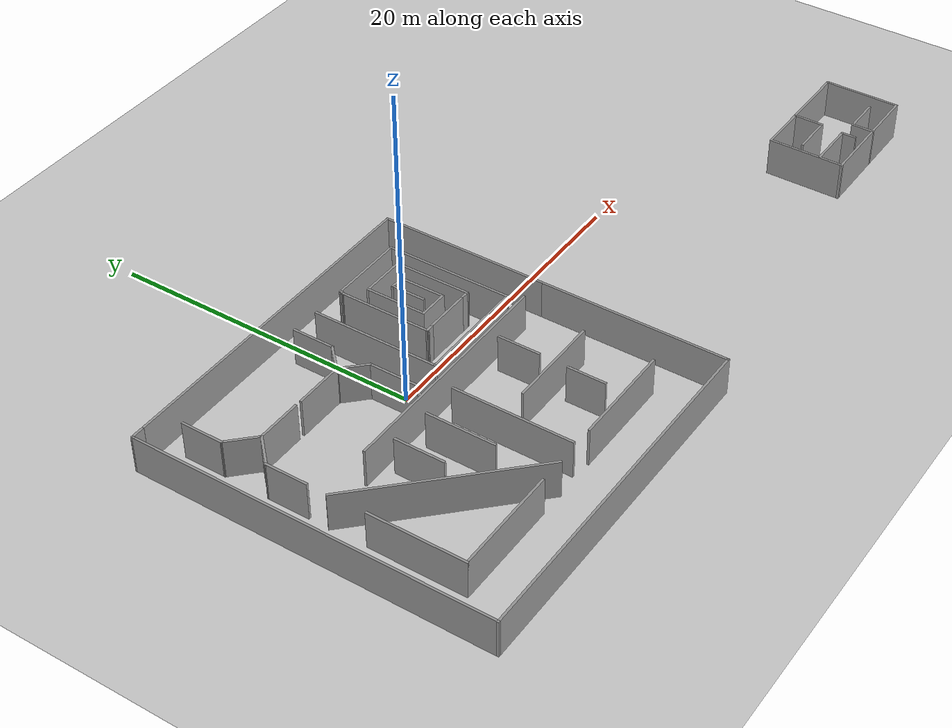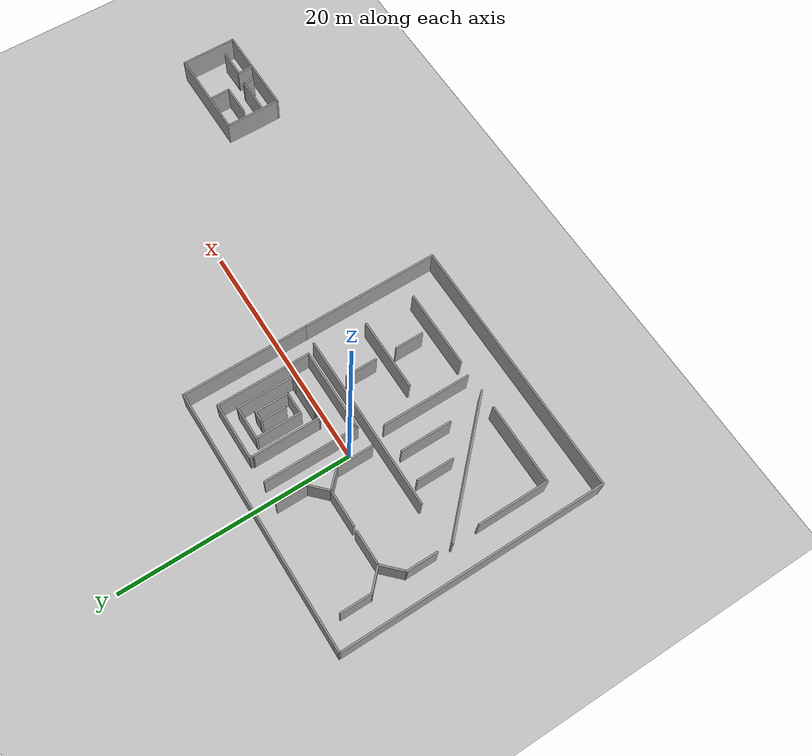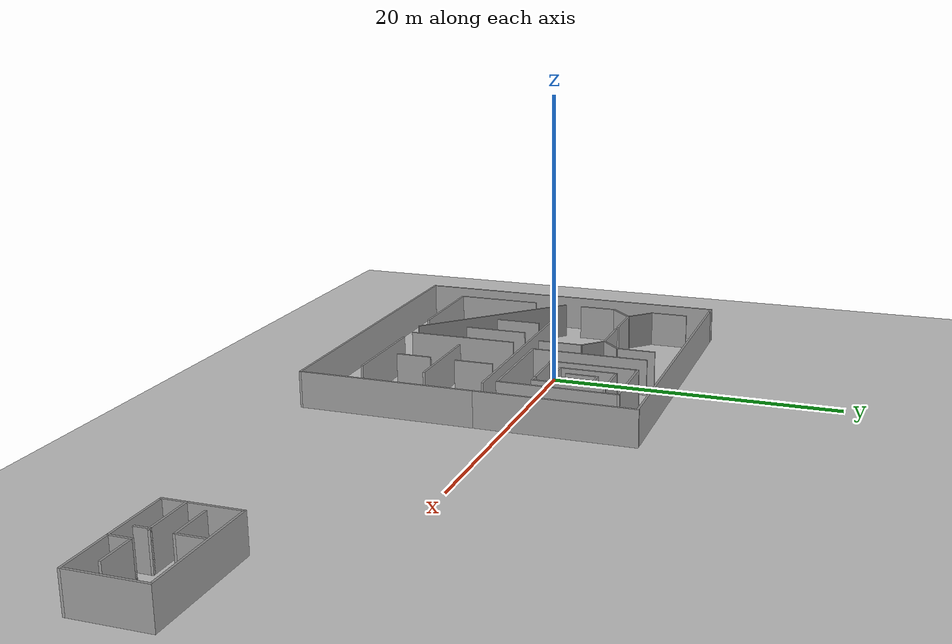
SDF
<sdf version="1.7">
 <world name="default">
  <light name="sun" type="directional">
   <pose>0 0 10 0 -0 0</pose>
   <diffuse>0.8 0.8 0.8 1</diffuse>
   <specular>0.2 0.2 0.2 1</specular>
   <attenuation>
    <range>1000</range>
    <constant>0.9</constant>
    <linear>0.01</linear>
    <quadratic>0.001</quadratic>
   </attenuation>
   <direction>-0.5 0.1 -0.9</direction>
   <spot><inner_angle>0</inner_angle><outer_angle>0</outer_angle><falloff>0</falloff></spot>
  </light>
  <model name="ground_plane">
   <static>1</static>
   <link name="link">
    <collision name="collision">
     <geometry><plane><normal>0 0 1</normal><size>100 100</size></plane></geometry>
     <surface>
      <contact><collide_bitmask>65535</collide_bitmask></contact>
      <friction><ode><mu>100</mu><mu2>50</mu2></ode></friction>
     </surface>
    </collision>
    <visual name="visual">
     <cast_shadows>0</cast_shadows>
     <geometry><plane><normal>0 0 1</normal><size>100 100</size></plane></geometry>
     <material>
      <script><uri>file://media/materials/scripts/gazebo.material</uri><name>Gazebo/Grey</name></script>
     </material>
    </visual>
   </link>
  </model>
  <gravity>0 0 -9.8</gravity>
  <magnetic_field>6e-06 2.3e-05 -4.2e-05</magnetic_field>
  <atmosphere type="adiabatic"/>
  <physics type="ode">
   <max_step_size>0.001</max_step_size>
   <real_time_factor>1</real_time_factor>
   <real_time_update_rate>1000</real_time_update_rate>
  </physics>
  <scene><ambient>0.4 0.4 0.4 1</ambient><background>0.7 0.7 0.7 1</background><shadows>1</shadows></scene>
  <audio><device>default</device></audio>
  <spherical_coordinates>
   <surface_model>EARTH_WGS84</surface_model>
   <latitude_deg>0</latitude_deg>
   <longitude_deg>0</longitude_deg>
   <elevation>0</elevation>
   <heading_deg>0</heading_deg>
  </spherical_coordinates>
  <model name="room">
   <pose>34.9802 -9.01089 0 0 -0 0</pose>
   <link name="Wall_10">
    <collision name="Wall_10_Collision">
     <geometry><box><size>5 0.15 2.5</size></box></geometry>
     <pose>0 0 1.25 0 -0 0</pose>
    </collision>
    <visual name="Wall_10_Visual">
     <pose>0 0 1.25 0 -0 0</pose>
     <geometry><box><size>5 0.15 2.5</size></box></geometry>
     <material>
      <script><uri>file://media/materials/scripts/gazebo.material</uri><name>Gazebo/Grey</name></script>
      <ambient>1 1 1 1</ambient>
     </material>
     <meta><layer>0</layer></meta>
    </visual>
    <pose>-4.9771 0.000716 0 0 -0 1.5708</pose>
   </link>
   <link name="Wall_12">
    <collision name="Wall_12_Collision">
     <geometry><box><size>2 0.15 2.5</size></box></geometry>
     <pose>0 0 1.25 0 -0 0</pose>
    </collision>
    <visual name="Wall_12_Visual">
     <pose>0 0 1.25 0 -0 0</pose>
     <geometry><box><size>2 0.15 2.5</size></box></geometry>
     <material>
      <script><uri>file://media/materials/scripts/gazebo.material</uri><name>Gazebo/Grey</name></script>
      <ambient>1 1 1 1</ambient>
     </material>
     <meta><layer>0</layer></meta>
    </visual>
    <pose>-1.70715 1.49403 0 0 -0 -1.5708</pose>
   </link>
   <link name="Wall_13">
    <collision name="Wall_13_Collision">
     <geometry><box><size>2.75 0.15 2.5</size></box></geometry>
     <pose>0 0 1.25 0 -0 0</pose>
    </collision>
    <visual name="Wall_13_Visual">
     <pose>0 0 1.25 0 -0 0</pose>
     <geometry><box><size>2.75 0.15 2.5</size></box></geometry>
     <material>
      <script><uri>file://media/materials/scripts/gazebo.material</uri><name>Gazebo/Grey</name></script>
      <ambient>1 1 1 1</ambient>
     </material>
     <meta><layer>0</layer></meta>
    </visual>
    <pose>-3.00715 0.569031 0 0 -0 3.14159</pose>
   </link>
   <link name="Wall_15">
    <collision name="Wall_15_Collision">
     <geometry><box><size>3.25 0.15 2.5</size></box></geometry>
     <pose>0 0 1.25 0 -0 0</pose>
    </collision>
    <visual name="Wall_15_Visual">
     <pose>0 0 1.25 0 -0 0</pose>
     <geometry><box><size>3.25 0.15 2.5</size></box></geometry>
     <material>
      <script><uri>file://media/materials/scripts/gazebo.material</uri><name>Gazebo/Grey</name></script>
      <ambient>1 1 1 1</ambient>
     </material>
     <meta><layer>0</layer></meta>
    </visual>
    <pose>-3.37532 -0.921571 0 0 -0 0</pose>
   </link>
   <link name="Wall_16">
    <collision name="Wall_16_Collision">
     <geometry><box><size>1 0.15 2.5</size></box></geometry>
     <pose>0 0 1.25 0 -0 0</pose>
    </collision>
    <visual name="Wall_16_Visual">
     <pose>0 0 1.25 0 -0 0</pose>
     <geometry><box><size>1 0.15 2.5</size></box></geometry>
     <material>
      <script><uri>file://media/materials/scripts/gazebo.material</uri><name>Gazebo/Grey</name></script>
      <ambient>1 1 1 1</ambient>
     </material>
     <meta><layer>0</layer></meta>
    </visual>
    <pose>-1.82532 -1.34657 0 0 -0 -1.5708</pose>
   </link>
   <link name="Wall_21">
    <collision name="Wall_21_Collision">
     <geometry><box><size>1.5 0.15 2.5</size></box></geometry>
     <pose>0 0 1.25 0 -0 0</pose>
    </collision>
    <visual name="Wall_21_Visual">
     <pose>0 0 1.25 0 -0 0</pose>
     <geometry><box><size>1.5 0.15 2.5</size></box></geometry>
     <material>
      <script><uri>file://media/materials/scripts/gazebo.material</uri><name>Gazebo/Grey</name></script>
      <ambient>1 1 1 1</ambient>
     </material>
     <meta><layer>0</layer></meta>
    </visual>
    <pose>-0.622763 -1.75072 0 0 -0 1.5708</pose>
   </link>
   <link name="Wall_22">
    <collision name="Wall_22_Collision">
     <geometry><box><size>2.5 0.15 2.5</size></box></geometry>
     <pose>0 0 1.25 0 -0 0</pose>
    </collision>
    <visual name="Wall_22_Visual">
     <pose>0 0 1.25 0 -0 0</pose>
     <geometry><box><size>2.5 0.15 2.5</size></box></geometry>
     <material>
      <script><uri>file://media/materials/scripts/gazebo.material</uri><name>Gazebo/Grey</name></script>
      <ambient>1 1 1 1</ambient>
     </material>
     <meta><layer>0</layer></meta>
    </visual>
    <pose>0.552238 -1.07572 0 0 -0 0</pose>
   </link>
   <link name="Wall_5">
    <collision name="Wall_5_Collision">
     <geometry><box><size>8 0.15 2.5</size></box></geometry>
     <pose>0 0 1.25 0 -0 0</pose>
    </collision>
    <visual name="Wall_5_Visual">
     <pose>0 0 1.25 0 -0 0</pose>
     <geometry><box><size>8 0.15 2.5</size></box></geometry>
     <material>
      <script><uri>file://media/materials/scripts/gazebo.material</uri><name>Gazebo/Grey</name></script>
      <ambient>1 1 1 1</ambient>
     </material>
     <meta><layer>0</layer></meta>
    </visual>
    <pose>-1.0521 2.42572 0 0 -0 0</pose>
   </link>
   <link name="Wall_7">
    <collision name="Wall_7_Collision">
     <geometry><box><size>5 0.15 2.5</size></box></geometry>
     <pose>0 0 1.25 0 -0 0</pose>
    </collision>
    <visual name="Wall_7_Visual">
     <pose>0 0 1.25 0 -0 0</pose>
     <geometry><box><size>5 0.15 2.5</size></box></geometry>
     <material>
      <script><uri>file://media/materials/scripts/gazebo.material</uri><name>Gazebo/Grey</name></script>
      <ambient>1 1 1 1</ambient>
     </material>
     <meta><layer>0</layer></meta>
    </visual>
    <pose>2.8729 0.000716 0 0 -0 -1.5708</pose>
   </link>
   <link name="Wall_9">
    <collision name="Wall_9_Collision">
     <geometry><box><size>8 0.15 2.5</size></box></geometry>
     <pose>0 0 1.25 0 -0 0</pose>
    </collision>
    <visual name="Wall_9_Visual">
     <pose>0 0 1.25 0 -0 0</pose>
     <geometry><box><size>8 0.15 2.5</size></box></geometry>
     <material>
      <script><uri>file://media/materials/scripts/gazebo.material</uri><name>Gazebo/Grey</name></script>
      <ambient>1 1 1 1</ambient>
     </material>
     <meta><layer>0</layer></meta>
    </visual>
    <pose>-1.0521 -2.42428 0 0 -0 3.14159</pose>
   </link>
   <static>1</static>
  </model>
  <model name="robot">
   <link name="base_link">
    <inertial>
     <pose>0.02 0 0.0128 0 -0 0</pose>
     <mass>1.25</mass>
     <inertia>
      <ixx>0.0231319</ixx>
      <ixy>1.51081e-20</ixy>
      <ixz>-0.00093</ixz>
      <iyy>0.0353519</iyy>
      <iyz>4.27978e-36</iyz>
      <izz>0.0146167</izz>
     </inertia>
    </inertial>
    <collision name="base_link_collision"><geometry><box><size>0.5 0.3 0.1</size></box></geometry></collision>
    <collision name="base_link_fixed_joint_lump__camera_link_collision_1">
     <pose>0.25 0 0.05 0 -0 0</pose>
     <geometry><box><size>0.02 0.1 0.02</size></box></geometry>
    </collision>
    <collision name="base_link_fixed_joint_lump__imu_link_collision_2">
     <pose>0 0 0.02 0 -0 0</pose>
     <geometry><box><size>0.02 0.02 0.02</size></box></geometry>
    </collision>
    <visual name="base_link_visual"><geometry><box><size>0.5 0.3 0.1</size></box></geometry></visual>
    <visual name="base_link_fixed_joint_lump__camera_link_visual_1">
     <pose>0.25 0 0.05 0 -0 0</pose>
     <geometry><box><size>0.02 0.1 0.02</size></box></geometry>
     <material>
      <script><name>Gazebo/Red</name><uri>file://media/materials/scripts/gazebo.material</uri></script>
     </material>
    </visual>
    <visual name="base_link_fixed_joint_lump__imu_link_visual_2">
     <pose>0 0 0.02 0 -0 0</pose>
     <geometry><box><size>0.02 0.02 0.02</size></box></geometry>
     <material>
      <script><name>Gazebo/Black</name><uri>file://media/materials/scripts/gazebo.material</uri></script>
     </material>
    </visual>
    <visual name="base_link_fixed_joint_lump__livox_link_visual_3">
     <pose>0 0 0.1 0 -0 0</pose>
     <geometry><box><size>0.1 0.06 0.06</size></box></geometry>
    </visual>
    <sensor name="imu_sensor" type="imu">
     <plugin name="imu_plugin" filename="libgazebo_ros_imu_sensor.so">
      <ros><namespace>/</namespace><remapping>~/out:=imu_raw</remapping></ros>
      <initial_orientation_as_reference>0</initial_orientation_as_reference>
     </plugin>
     <update_rate>200</update_rate>
     <always_on>1</always_on>
     <imu>
      <angular_velocity>
       <x>
        <noise type="gaussian">
         <mean>0</mean>
         <stddev>0</stddev>
         <bias_mean>0</bias_mean>
         <bias_stddev>0</bias_stddev>
        </noise>
       </x>
       <y>
        <noise type="gaussian">
         <mean>0</mean>
         <stddev>0</stddev>
         <bias_mean>0</bias_mean>
         <bias_stddev>0</bias_stddev>
        </noise>
       </y>
       <z>
        <noise type="gaussian">
         <mean>0</mean>
         <stddev>0</stddev>
         <bias_mean>0</bias_mean>
         <bias_stddev>0</bias_stddev>
        </noise>
       </z>
      </angular_velocity>
      <linear_acceleration>
       <x>
        <noise type="gaussian">
         <mean>0</mean>
         <stddev>0</stddev>
         <bias_mean>0</bias_mean>
         <bias_stddev>0</bias_stddev>
        </noise>
       </x>
       <y>
        <noise type="gaussian">
         <mean>0</mean>
         <stddev>0</stddev>
         <bias_mean>0</bias_mean>
         <bias_stddev>0</bias_stddev>
        </noise>
       </y>
       <z>
        <noise type="gaussian">
         <mean>0</mean>
         <stddev>0</stddev>
         <bias_mean>0</bias_mean>
         <bias_stddev>0</bias_stddev>
        </noise>
       </z>
      </linear_acceleration>
     </imu>
     <pose>0 0 0.02 0 -0 0</pose>
    </sensor>
    <sensor name="livox_link" type="ray">
     <visualize>1</visualize>
     <update_rate>10</update_rate>
     <plugin name="livox_link_plugin" filename="libros2_livox.so">
      <ray>
       <scan>
        <horizontal>
         <samples>100</samples>
         <resolution>1</resolution>
         <min_angle>0</min_angle>
         <max_angle>6.2831852</max_angle>
        </horizontal>
        <vertical>
         <samples>360</samples>
         <resolution>1</resolution>
         <min_angle>-0.12601276984444446</min_angle>
         <max_angle>0.9637707965111111</max_angle>
        </vertical>
       </scan>
       <range><min>0.1</min><max>200.0</max><resolution>0.002</resolution></range>
       <noise><type>gaussian</type><mean>0.0</mean><stddev>0.002</stddev></noise>
      </ray>
      <visualize>0</visualize>
      <samples>30000</samples>
      <downsample>1</downsample>
      <csv_file_name>/home/akun/workspace/CAR/1_URDF_ws/install/ros2_livox_simulation/share/ros2_livox_simulation/scan_mode/mid360.csv</csv_file_name>
      <topic>livox</topic>
     </plugin>
     <pose>0 0 0.1 0 -0 0</pose>
     <ray>
      <scan>
       <horizontal>
        <samples>640</samples>
        <resolution>1</resolution>
        <min_angle>0</min_angle>
        <max_angle>0</max_angle>
       </horizontal>
       <vertical><samples>1</samples><min_angle>0</min_angle><max_angle>0</max_angle></vertical>
      </scan>
      <range><min>0</min><max>0</max></range>
     </ray>
    </sensor>
   </link>
   <joint name="wheel_1_joint" type="revolute">
    <pose relative_to="base_link">0.25 0.17 -0.05 0 -0 0</pose>
    <parent>base_link</parent>
    <child>wheel_1_link</child>
    <axis>
     <xyz>0 1 0</xyz>
     <limit><lower>-100</lower><upper>100</upper><effort>100</effort><velocity>10</velocity></limit>
     <dynamics><spring_reference>0</spring_reference><spring_stiffness>0</spring_stiffness></dynamics>
    </axis>
   </joint>
   <link name="wheel_1_link">
    <pose relative_to="wheel_1_joint">0 0 0 0 -0 0</pose>
    <inertial>
     <mass>0.05</mass>
     <inertia>
      <ixx>3.79167e-05</ixx>
      <ixy>0</ixy>
      <ixz>0</ixz>
      <iyy>3.79167e-05</iyy>
      <iyz>0</iyz>
      <izz>6.25e-05</izz>
     </inertia>
    </inertial>
    <collision name="wheel_1_link_collision">
     <pose>0 0 0 1.57079 -0 0</pose>
     <geometry><cylinder><length>0.04</length><radius>0.05</radius></cylinder></geometry>
     <surface>
      <contact><ode><kp>1e+09</kp><kd>1</kd></ode></contact>
      <friction><ode><mu>0</mu><mu2>0</mu2></ode></friction>
     </surface>
    </collision>
    <visual name="wheel_1_link_visual">
     <pose>0 0 0 1.57079 -0 0</pose>
     <geometry><cylinder><length>0.04</length><radius>0.05</radius></cylinder></geometry>
     <material>
      <script><name>Gazebo/Yellow</name><uri>file://media/materials/scripts/gazebo.material</uri></script>
     </material>
    </visual>
   </link>
   <joint name="wheel_2_joint" type="revolute">
    <pose relative_to="base_link">-0.25 0.17 -0.05 0 -0 0</pose>
    <parent>base_link</parent>
    <child>wheel_2_link</child>
    <axis>
     <xyz>0 1 0</xyz>
     <limit><effort>100</effort><velocity>10</velocity><lower>-1e+16</lower><upper>1e+16</upper></limit>
     <dynamics><spring_reference>0</spring_reference><spring_stiffness>0</spring_stiffness></dynamics>
    </axis>
   </joint>
   <link name="wheel_2_link">
    <pose relative_to="wheel_2_joint">0 0 0 0 -0 0</pose>
    <inertial>
     <mass>0.05</mass>
     <inertia>
      <ixx>3.79167e-05</ixx>
      <ixy>0</ixy>
      <ixz>0</ixz>
      <iyy>3.79167e-05</iyy>
      <iyz>0</iyz>
      <izz>6.25e-05</izz>
     </inertia>
    </inertial>
    <collision name="wheel_2_link_collision">
     <pose>0 0 0 1.57079 -0 0</pose>
     <geometry><cylinder><length>0.04</length><radius>0.05</radius></cylinder></geometry>
     <surface>
      <contact><ode><kp>1e+09</kp><kd>1</kd></ode></contact>
      <friction><ode><mu>5</mu><mu2>5</mu2></ode></friction>
     </surface>
    </collision>
    <visual name="wheel_2_link_visual">
     <pose>0 0 0 1.57079 -0 0</pose>
     <geometry><cylinder><length>0.04</length><radius>0.05</radius></cylinder></geometry>
     <material>
      <script><name>Gazebo/Yellow</name><uri>file://media/materials/scripts/gazebo.material</uri></script>
     </material>
    </visual>
   </link>
   <joint name="wheel_3_joint" type="revolute">
    <pose relative_to="base_link">0.25 -0.17 -0.05 0 -0 0</pose>
    <parent>base_link</parent>
    <child>wheel_3_link</child>
    <axis>
     <xyz>0 1 0</xyz>
     <limit><lower>-100</lower><upper>100</upper><effort>100</effort><velocity>10</velocity></limit>
     <dynamics><spring_reference>0</spring_reference><spring_stiffness>0</spring_stiffness></dynamics>
    </axis>
   </joint>
   <link name="wheel_3_link">
    <pose relative_to="wheel_3_joint">0 0 0 0 -0 0</pose>
    <inertial>
     <mass>0.05</mass>
     <inertia>
      <ixx>3.79167e-05</ixx>
      <ixy>0</ixy>
      <ixz>0</ixz>
      <iyy>3.79167e-05</iyy>
      <iyz>0</iyz>
      <izz>6.25e-05</izz>
     </inertia>
    </inertial>
    <collision name="wheel_3_link_collision">
     <pose>0 0 0 1.57079 -0 0</pose>
     <geometry><cylinder><length>0.04</length><radius>0.05</radius></cylinder></geometry>
     <surface>
      <contact><ode><kp>1e+09</kp><kd>1</kd></ode></contact>
      <friction><ode><mu>0</mu><mu2>0</mu2></ode></friction>
     </surface>
    </collision>
    <visual name="wheel_3_link_visual">
     <pose>0 0 0 1.57079 -0 0</pose>
     <geometry><cylinder><length>0.04</length><radius>0.05</radius></cylinder></geometry>
     <material>
      <script><name>Gazebo/Yellow</name><uri>file://media/materials/scripts/gazebo.material</uri></script>
     </material>
    </visual>
   </link>
   <joint name="wheel_4_joint" type="revolute">
    <pose relative_to="base_link">-0.25 -0.17 -0.05 0 -0 0</pose>
    <parent>base_link</parent>
    <child>wheel_4_link</child>
    <axis>
     <xyz>0 1 0</xyz>
     <limit><effort>100</effort><velocity>10</velocity><lower>-1e+16</lower><upper>1e+16</upper></limit>
     <dynamics><spring_reference>0</spring_reference><spring_stiffness>0</spring_stiffness></dynamics>
    </axis>
   </joint>
   <link name="wheel_4_link">
    <pose relative_to="wheel_4_joint">0 0 0 0 -0 0</pose>
    <inertial>
     <mass>0.05</mass>
     <inertia>
      <ixx>3.79167e-05</ixx>
      <ixy>0</ixy>
      <ixz>0</ixz>
      <iyy>3.79167e-05</iyy>
      <iyz>0</iyz>
      <izz>6.25e-05</izz>
     </inertia>
    </inertial>
    <collision name="wheel_4_link_collision">
     <pose>0 0 0 1.57079 -0 0</pose>
     <geometry><cylinder><length>0.04</length><radius>0.05</radius></cylinder></geometry>
     <surface>
      <contact><ode><kp>1e+09</kp><kd>1</kd></ode></contact>
      <friction><ode><mu>5</mu><mu2>5</mu2></ode></friction>
     </surface>
    </collision>
    <visual name="wheel_4_link_visual">
     <pose>0 0 0 1.57079 -0 0</pose>
     <geometry><cylinder><length>0.04</length><radius>0.05</radius></cylinder></geometry>
     <material>
      <script><name>Gazebo/Yellow</name><uri>file://media/materials/scripts/gazebo.material</uri></script>
     </material>
    </visual>
   </link>
   <static>0</static>
   <plugin name="diff_drive" filename="libgazebo_ros_diff_drive.so">
    <ros><namespace>/</namespace><remapping>cmd_vel:=cmd_vel</remapping><remapping>odom:=odom</remapping></ros>
    <update_rate>30</update_rate>
    <left_joint>wheel_2_joint</left_joint>
    <right_joint>wheel_4_joint</right_joint>
    <wheel_separation>0.3</wheel_separation>
    <wheel_diameter>0.10</wheel_diameter>
    <max_wheel_torque>1000</max_wheel_torque>
    <max_wheel_acceleration>5.0</max_wheel_acceleration>
    <publish_odom>1</publish_odom>
    <publish_odom_tf>1</publish_odom_tf>
    <publish_wheel_tf>1</publish_wheel_tf>
    <odometry_frame>odom</odometry_frame>
    <robot_base_frame>base_link</robot_base_frame>
   </plugin>
   <pose>-0.024576 1.55531 0.099995 -9e-06 -1.4e-05 -0.142259</pose>
  </model>
  <model name="Untitled">
   <pose>-1.10404 -2.62491 0 0 -0 0</pose>
   <link name="Wall_1">
    <collision name="Wall_1_Collision">
     <geometry><box><size>22 0.15 2.5</size></box></geometry>
     <pose>0 0 1.25 0 -0 0</pose>
    </collision>
    <visual name="Wall_1_Visual">
     <pose>0 0 1.25 0 -0 0</pose>
     <geometry><box><size>22 0.15 2.5</size></box></geometry>
     <material>
      <script><uri>file://media/materials/scripts/gazebo.material</uri><name>Gazebo/Grey</name></script>
      <ambient>1 1 1 1</ambient>
     </material>
     <meta><layer>0</layer></meta>
    </visual>
    <pose>0.375 11.2325 0 0 -0 0</pose>
   </link>
   <link name="Wall_10">
    <collision name="Wall_10_Collision">
     <geometry><box><size>2.75 0.15 2.5</size></box></geometry>
     <pose>0 0 1.25 0 -0 0</pose>
    </collision>
    <visual name="Wall_10_Visual">
     <pose>0 0 1.25 0 -0 0</pose>
     <geometry><box><size>2.75 0.15 2.5</size></box></geometry>
     <material>
      <script><uri>file://media/materials/scripts/gazebo.material</uri><name>Gazebo/Grey</name></script>
      <ambient>1 1 1 1</ambient>
     </material>
     <meta><layer>0</layer></meta>
    </visual>
    <pose>-9.03139 8.42187 0 0 -0 -1.5708</pose>
   </link>
   <link name="Wall_12">
    <collision name="Wall_12_Collision">
     <geometry><box><size>2.25 0.15 2.5</size></box></geometry>
     <pose>0 0 1.25 0 -0 0</pose>
    </collision>
    <visual name="Wall_12_Visual">
     <pose>0 0 1.25 0 -0 0</pose>
     <geometry><box><size>2.25 0.15 2.5</size></box></geometry>
     <material>
      <script><uri>file://media/materials/scripts/gazebo.material</uri><name>Gazebo/Grey</name></script>
      <ambient>1 1 1 1</ambient>
     </material>
     <meta><layer>0</layer></meta>
    </visual>
    <pose>-8.28893 6.37941 0 0 -0 -0.785398</pose>
   </link>
   <link name="Wall_13">
    <collision name="Wall_13_Collision">
     <geometry><box><size>2.25 0.15 2.5</size></box></geometry>
     <pose>0 0 1.25 0 -0 0</pose>
    </collision>
    <visual name="Wall_13_Visual">
     <pose>0 0 1.25 0 -0 0</pose>
     <geometry><box><size>2.25 0.15 2.5</size></box></geometry>
     <material>
      <script><uri>file://media/materials/scripts/gazebo.material</uri><name>Gazebo/Grey</name></script>
      <ambient>1 1 1 1</ambient>
     </material>
     <meta><layer>0</layer></meta>
    </visual>
    <pose>-8.28893 4.89449 0 0 -0 -2.35619</pose>
   </link>
   <link name="Wall_14">
    <collision name="Wall_14_Collision">
     <geometry><box><size>2.75 0.15 2.5</size></box></geometry>
     <pose>0 0 1.25 0 -0 0</pose>
    </collision>
    <visual name="Wall_14_Visual">
     <pose>0 0 1.25 0 -0 0</pose>
     <geometry><box><size>2.75 0.15 2.5</size></box></geometry>
     <material>
      <script><uri>file://media/materials/scripts/gazebo.material</uri><name>Gazebo/Grey</name></script>
      <ambient>1 1 1 1</ambient>
     </material>
     <meta><layer>0</layer></meta>
    </visual>
    <pose>-9.03139 2.85202 0 0 -0 -1.5708</pose>
   </link>
   <link name="Wall_16">
    <collision name="Wall_16_Collision">
     <geometry><box><size>12.25 0.15 2.5</size></box></geometry>
     <pose>0 0 1.25 0 -0 0</pose>
    </collision>
    <visual name="Wall_16_Visual">
     <pose>0 0 1.25 0 -0 0</pose>
     <geometry><box><size>12.25 0.15 2.5</size></box></geometry>
     <material>
      <script><uri>file://media/materials/scripts/gazebo.material</uri><name>Gazebo/Grey</name></script>
      <ambient>1 1 1 1</ambient>
     </material>
     <meta><layer>0</layer></meta>
    </visual>
    <pose>-4.78694 -4.09932 0 0 -0 -0.785398</pose>
   </link>
   <link name="Wall_18">
    <collision name="Wall_18_Collision">
     <geometry><box><size>6.25 0.15 2.5</size></box></geometry>
     <pose>0 0 1.25 0 -0 0</pose>
    </collision>
    <visual name="Wall_18_Visual">
     <pose>0 0 1.25 0 -0 0</pose>
     <geometry><box><size>6.25 0.15 2.5</size></box></geometry>
     <material>
      <script><uri>file://media/materials/scripts/gazebo.material</uri><name>Gazebo/Grey</name></script>
      <ambient>1 1 1 1</ambient>
     </material>
     <meta><layer>0</layer></meta>
    </visual>
    <pose>-8.97375 -5.28529 0 0 -0 -1.5708</pose>
   </link>
   <link name="Wall_19">
    <collision name="Wall_19_Collision">
     <geometry><box><size>7 0.15 2.5</size></box></geometry>
     <pose>0 0 1.25 0 -0 0</pose>
    </collision>
    <visual name="Wall_19_Visual">
     <pose>0 0 1.25 0 -0 0</pose>
     <geometry><box><size>7 0.15 2.5</size></box></geometry>
     <material>
      <script><uri>file://media/materials/scripts/gazebo.material</uri><name>Gazebo/Grey</name></script>
      <ambient>1 1 1 1</ambient>
     </material>
     <meta><layer>0</layer></meta>
    </visual>
    <pose>-5.54875 -8.33529 0 0 -0 0</pose>
   </link>
   <link name="Wall_2">
    <collision name="Wall_2_Collision">
     <geometry><box><size>11 0.15 2.5</size></box></geometry>
     <pose>0 0 1.25 0 -0 0</pose>
    </collision>
    <visual name="Wall_2_Visual">
     <pose>0 0 1.25 0 -0 0</pose>
     <geometry><box><size>11 0.15 2.5</size></box></geometry>
     <material>
      <script><uri>file://media/materials/scripts/gazebo.material</uri><name>Gazebo/Grey</name></script>
      <ambient>1 1 1 1</ambient>
     </material>
     <meta><layer>0</layer></meta>
    </visual>
    <pose>11.3 5.8075 0 0 -0 -1.5708</pose>
   </link>
   <link name="Wall_21">
    <collision name="Wall_21_Collision">
     <geometry><box><size>3 0.15 2.5</size></box></geometry>
     <pose>0 0 1.25 0 -0 0</pose>
    </collision>
    <visual name="Wall_21_Visual">
     <pose>0 0 1.25 0 -0 0</pose>
     <geometry><box><size>3 0.15 2.5</size></box></geometry>
     <material>
      <script><uri>file://media/materials/scripts/gazebo.material</uri><name>Gazebo/Grey</name></script>
      <ambient>1 1 1 1</ambient>
     </material>
     <meta><layer>0</layer></meta>
    </visual>
    <pose>-6.12146 5.63695 0 0 -0 0</pose>
   </link>
   <link name="Wall_24">
    <collision name="Wall_24_Collision">
     <geometry><box><size>3.25 0.15 2.5</size></box></geometry>
     <pose>0 0 1.25 0 -0 0</pose>
    </collision>
    <visual name="Wall_24_Visual">
     <pose>0 0 1.25 0 -0 0</pose>
     <geometry><box><size>3.25 0.15 2.5</size></box></geometry>
     <material>
      <script><uri>file://media/materials/scripts/gazebo.material</uri><name>Gazebo/Grey</name></script>
      <ambient>1 1 1 1</ambient>
     </material>
     <meta><layer>0</layer></meta>
    </visual>
    <pose>-2.65499 5.61139 0 0 -0 0</pose>
   </link>
   <link name="Wall_25">
    <collision name="Wall_25_Collision">
     <geometry><box><size>2 0.15 2.5</size></box></geometry>
     <pose>0 0 1.25 0 -0 0</pose>
    </collision>
    <visual name="Wall_25_Visual">
     <pose>0 0 1.25 0 -0 0</pose>
     <geometry><box><size>2 0.15 2.5</size></box></geometry>
     <material>
      <script><uri>file://media/materials/scripts/gazebo.material</uri><name>Gazebo/Grey</name></script>
      <ambient>1 1 1 1</ambient>
     </material>
     <meta><layer>0</layer></meta>
    </visual>
    <pose>-0.450922 6.26546 0 0 -0 0.785398</pose>
   </link>
   <link name="Wall_26">
    <collision name="Wall_26_Collision">
     <geometry><box><size>2.75 0.15 2.5</size></box></geometry>
     <pose>0 0 1.25 0 -0 0</pose>
    </collision>
    <visual name="Wall_26_Visual">
     <pose>0 0 1.25 0 -0 0</pose>
     <geometry><box><size>2.75 0.15 2.5</size></box></geometry>
     <material>
      <script><uri>file://media/materials/scripts/gazebo.material</uri><name>Gazebo/Grey</name></script>
      <ambient>1 1 1 1</ambient>
     </material>
     <meta><layer>0</layer></meta>
    </visual>
    <pose>0.203152 8.21954 0 0 -0 1.5708</pose>
   </link>
   <link name="Wall_28">
    <collision name="Wall_28_Collision">
     <geometry><box><size>2 0.15 2.5</size></box></geometry>
     <pose>0 0 1.25 0 -0 0</pose>
    </collision>
    <visual name="Wall_28_Visual">
     <pose>0 0 1.25 0 -0 0</pose>
     <geometry><box><size>2 0.15 2.5</size></box></geometry>
     <material>
      <script><uri>file://media/materials/scripts/gazebo.material</uri><name>Gazebo/Grey</name></script>
      <ambient>1 1 1 1</ambient>
     </material>
     <meta><layer>0</layer></meta>
    </visual>
    <pose>-0.450922 4.95732 0 0 -0 -0.785398</pose>
   </link>
   <link name="Wall_29">
    <collision name="Wall_29_Collision">
     <geometry><box><size>3.25 0.15 2.5</size></box></geometry>
     <pose>0 0 1.25 0 -0 0</pose>
    </collision>
    <visual name="Wall_29_Visual">
     <pose>0 0 1.25 0 -0 0</pose>
     <geometry><box><size>3.25 0.15 2.5</size></box></geometry>
     <material>
      <script><uri>file://media/materials/scripts/gazebo.material</uri><name>Gazebo/Grey</name></script>
      <ambient>1 1 1 1</ambient>
     </material>
     <meta><layer>0</layer></meta>
    </visual>
    <pose>0.203152 2.75324 0 0 -0 -1.5708</pose>
   </link>
   <link name="Wall_3">
    <collision name="Wall_3_Collision">
     <geometry><box><size>12.25 0.15 2.5</size></box></geometry>
     <pose>0 0 1.25 0 -0 0</pose>
    </collision>
    <visual name="Wall_3_Visual">
     <pose>0 0 1.25 0 -0 0</pose>
     <geometry><box><size>12.25 0.15 2.5</size></box></geometry>
     <material>
      <script><uri>file://media/materials/scripts/gazebo.material</uri><name>Gazebo/Grey</name></script>
      <ambient>1 1 1 1</ambient>
     </material>
     <meta><layer>0</layer></meta>
    </visual>
    <pose>11.3 -5.6675 0 0 -0 -1.5708</pose>
   </link>
   <link name="Wall_31">
    <collision name="Wall_31_Collision">
     <geometry><box><size>15.25 0.15 2.5</size></box></geometry>
     <pose>0 0 1.25 0 -0 0</pose>
    </collision>
    <visual name="Wall_31_Visual">
     <pose>0 0 1.25 0 -0 0</pose>
     <geometry><box><size>15.25 0.15 2.5</size></box></geometry>
     <material>
      <script><uri>file://media/materials/scripts/gazebo.material</uri><name>Gazebo/Grey</name></script>
      <ambient>1 1 1 1</ambient>
     </material>
     <meta><layer>0</layer></meta>
    </visual>
    <pose>2.11121 0.50819 0 0 -0 0</pose>
   </link>
   <link name="Wall_33">
    <collision name="Wall_33_Collision">
     <geometry><box><size>3.25 0.15 2.5</size></box></geometry>
     <pose>0 0 1.25 0 -0 0</pose>
    </collision>
    <visual name="Wall_33_Visual">
     <pose>0 0 1.25 0 -0 0</pose>
     <geometry><box><size>3.25 0.15 2.5</size></box></geometry>
     <material>
      <script><uri>file://media/materials/scripts/gazebo.material</uri><name>Gazebo/Grey</name></script>
      <ambient>1 1 1 1</ambient>
     </material>
     <meta><layer>0</layer></meta>
    </visual>
    <pose>-3.83112 -1.82604 0 0 -0 -1.5708</pose>
   </link>
   <link name="Wall_35">
    <collision name="Wall_35_Collision">
     <geometry><box><size>4.5 0.15 2.5</size></box></geometry>
     <pose>0 0 1.25 0 -0 0</pose>
    </collision>
    <visual name="Wall_35_Visual">
     <pose>0 0 1.25 0 -0 0</pose>
     <geometry><box><size>4.5 0.15 2.5</size></box></geometry>
     <material>
      <script><uri>file://media/materials/scripts/gazebo.material</uri><name>Gazebo/Grey</name></script>
      <ambient>1 1 1 1</ambient>
     </material>
     <meta><layer>0</layer></meta>
    </visual>
    <pose>-1.31359 -2.69283 0 0 -0 -1.5708</pose>
   </link>
   <link name="Wall_37">
    <collision name="Wall_37_Collision">
     <geometry><box><size>7.75 0.15 2.5</size></box></geometry>
     <pose>0 0 1.25 0 -0 0</pose>
    </collision>
    <visual name="Wall_37_Visual">
     <pose>0 0 1.25 0 -0 0</pose>
     <geometry><box><size>7.75 0.15 2.5</size></box></geometry>
     <material>
      <script><uri>file://media/materials/scripts/gazebo.material</uri><name>Gazebo/Grey</name></script>
      <ambient>1 1 1 1</ambient>
     </material>
     <meta><layer>0</layer></meta>
    </visual>
    <pose>1.09814 -4.33871 0 0 -0 -1.5708</pose>
   </link>
   <link name="Wall_39">
    <collision name="Wall_39_Collision">
     <geometry><box><size>6.75 0.15 2.5</size></box></geometry>
     <pose>0 0 1.25 0 -0 0</pose>
    </collision>
    <visual name="Wall_39_Visual">
     <pose>0 0 1.25 0 -0 0</pose>
     <geometry><box><size>6.75 0.15 2.5</size></box></geometry>
     <material>
      <script><uri>file://media/materials/scripts/gazebo.material</uri><name>Gazebo/Grey</name></script>
      <ambient>1 1 1 1</ambient>
     </material>
     <meta><layer>0</layer></meta>
    </visual>
    <pose>5.66708 -8.36015 0 0 -0 0</pose>
   </link>
   <link name="Wall_4">
    <collision name="Wall_4_Collision">
     <geometry><box><size>22.75 0.15 2.5</size></box></geometry>
     <pose>0 0 1.25 0 -0 0</pose>
    </collision>
    <visual name="Wall_4_Visual">
     <pose>0 0 1.25 0 -0 0</pose>
     <geometry><box><size>22.75 0.15 2.5</size></box></geometry>
     <material>
      <script><uri>file://media/materials/scripts/gazebo.material</uri><name>Gazebo/Grey</name></script>
      <ambient>1 1 1 1</ambient>
     </material>
     <meta><layer>0</layer></meta>
    </visual>
    <pose>0 -11.7175 0 0 -0 3.14159</pose>
   </link>
   <link name="Wall_41">
    <collision name="Wall_41_Collision">
     <geometry><box><size>6.25 0.15 2.5</size></box></geometry>
     <pose>0 0 1.25 0 -0 0</pose>
    </collision>
    <visual name="Wall_41_Visual">
     <pose>0 0 1.25 0 -0 0</pose>
     <geometry><box><size>6.25 0.15 2.5</size></box></geometry>
     <material>
      <script><uri>file://media/materials/scripts/gazebo.material</uri><name>Gazebo/Grey</name></script>
      <ambient>1 1 1 1</ambient>
     </material>
     <meta><layer>0</layer></meta>
    </visual>
    <pose>5.89417 -3.88747 0 0 -0 0</pose>
   </link>
   <link name="Wall_43">
    <collision name="Wall_43_Collision">
     <geometry><box><size>2.75 0.15 2.5</size></box></geometry>
     <pose>0 0 1.25 0 -0 0</pose>
    </collision>
    <visual name="Wall_43_Visual">
     <pose>0 0 1.25 0 -0 0</pose>
     <geometry><box><size>2.75 0.15 2.5</size></box></geometry>
     <material>
      <script><uri>file://media/materials/scripts/gazebo.material</uri><name>Gazebo/Grey</name></script>
      <ambient>1 1 1 1</ambient>
     </material>
     <meta><layer>0</layer></meta>
    </visual>
    <pose>6.00486 -1.54968 0 0 -0 -1.5708</pose>
   </link>
   <link name="Wall_45">
    <collision name="Wall_45_Collision">
     <geometry><box><size>2.5 0.15 2.5</size></box></geometry>
     <pose>0 0 1.25 0 -0 0</pose>
    </collision>
    <visual name="Wall_45_Visual">
     <pose>0 0 1.25 0 -0 0</pose>
     <geometry><box><size>2.5 0.15 2.5</size></box></geometry>
     <material>
      <script><uri>file://media/materials/scripts/gazebo.material</uri><name>Gazebo/Grey</name></script>
      <ambient>1 1 1 1</ambient>
     </material>
     <meta><layer>0</layer></meta>
    </visual>
    <pose>5.94522 -5.957 0 0 -0 -1.5708</pose>
   </link>
   <link name="Wall_48">
    <collision name="Wall_48_Collision">
     <geometry><box><size>8.25 0.15 2.5</size></box></geometry>
     <pose>0 0 1.25 0 -0 0</pose>
    </collision>
    <visual name="Wall_48_Visual">
     <pose>0 0 1.25 0 -0 0</pose>
     <geometry><box><size>8.25 0.15 2.5</size></box></geometry>
     <material>
      <script><uri>file://media/materials/scripts/gazebo.material</uri><name>Gazebo/Grey</name></script>
      <ambient>1 1 1 1</ambient>
     </material>
     <meta><layer>0</layer></meta>
    </visual>
    <pose>2.06173 5.37656 0 0 -0 -1.5708</pose>
   </link>
   <link name="Wall_5">
    <collision name="Wall_5_Collision">
     <geometry><box><size>23 0.15 2.5</size></box></geometry>
     <pose>0 0 1.25 0 -0 0</pose>
    </collision>
    <visual name="Wall_5_Visual">
     <pose>0 0 1.25 0 -0 0</pose>
     <geometry><box><size>23 0.15 2.5</size></box></geometry>
     <material>
      <script><uri>file://media/materials/scripts/gazebo.material</uri><name>Gazebo/Grey</name></script>
      <ambient>1 1 1 1</ambient>
     </material>
     <meta><layer>0</layer></meta>
    </visual>
    <pose>-11.3 -0.2925 0 0 -0 1.5708</pose>
   </link>
   <link name="Wall_50">
    <collision name="Wall_50_Collision">
     <geometry><box><size>7.25 0.15 2.5</size></box></geometry>
     <pose>0 0 1.25 0 -0 0</pose>
    </collision>
    <visual name="Wall_50_Visual">
     <pose>0 0 1.25 0 -0 0</pose>
     <geometry><box><size>7.25 0.15 2.5</size></box></geometry>
     <material>
      <script><uri>file://media/materials/scripts/gazebo.material</uri><name>Gazebo/Grey</name></script>
      <ambient>1 1 1 1</ambient>
     </material>
     <meta><layer>0</layer></meta>
    </visual>
    <pose>5.61173 1.32656 0 0 -0 0</pose>
   </link>
   <link name="Wall_52">
    <collision name="Wall_52_Collision">
     <geometry><box><size>8.25 0.15 2.5</size></box></geometry>
     <pose>0 0 1.25 0 -0 0</pose>
    </collision>
    <visual name="Wall_52_Visual">
     <pose>0 0 1.25 0 -0 0</pose>
     <geometry><box><size>8.25 0.15 2.5</size></box></geometry>
     <material>
      <script><uri>file://media/materials/scripts/gazebo.material</uri><name>Gazebo/Grey</name></script>
      <ambient>1 1 1 1</ambient>
     </material>
     <meta><layer>0</layer></meta>
    </visual>
    <pose>9.16173 5.37656 0 0 -0 1.5708</pose>
   </link>
   <link name="Wall_54">
    <collision name="Wall_54_Collision">
     <geometry><box><size>5 0.15 2.5</size></box></geometry>
     <pose>0 0 1.25 0 -0 0</pose>
    </collision>
    <visual name="Wall_54_Visual">
     <pose>0 0 1.25 0 -0 0</pose>
     <geometry><box><size>5 0.15 2.5</size></box></geometry>
     <material>
      <script><uri>file://media/materials/scripts/gazebo.material</uri><name>Gazebo/Grey</name></script>
      <ambient>1 1 1 1</ambient>
     </material>
     <meta><layer>0</layer></meta>
    </visual>
    <pose>6.73673 9.42656 0 0 -0 3.14159</pose>
   </link>
   <link name="Wall_56">
    <collision name="Wall_56_Collision">
     <geometry><box><size>6 0.15 2.5</size></box></geometry>
     <pose>0 0 1.25 0 -0 0</pose>
    </collision>
    <visual name="Wall_56_Visual">
     <pose>0 0 1.25 0 -0 0</pose>
     <geometry><box><size>6 0.15 2.5</size></box></geometry>
     <material>
      <script><uri>file://media/materials/scripts/gazebo.material</uri><name>Gazebo/Grey</name></script>
      <ambient>1 1 1 1</ambient>
     </material>
     <meta><layer>0</layer></meta>
    </visual>
    <pose>4.22621 6.27609 0 0 -0 -1.5708</pose>
   </link>
   <link name="Wall_58">
    <collision name="Wall_58_Collision">
     <geometry><box><size>3 0.15 2.5</size></box></geometry>
     <pose>0 0 1.25 0 -0 0</pose>
    </collision>
    <visual name="Wall_58_Visual">
     <pose>0 0 1.25 0 -0 0</pose>
     <geometry><box><size>3 0.15 2.5</size></box></geometry>
     <material>
      <script><uri>file://media/materials/scripts/gazebo.material</uri><name>Gazebo/Grey</name></script>
      <ambient>1 1 1 1</ambient>
     </material>
     <meta><layer>0</layer></meta>
    </visual>
    <pose>6.14723 3.38407 0 0 -0 0</pose>
   </link>
   <link name="Wall_6">
    <collision name="Wall_6_Collision">
     <geometry><box><size>0.15 0.15 2.5</size></box></geometry>
     <pose>0 0 1.25 0 -0 0</pose>
    </collision>
    <visual name="Wall_6_Visual">
     <pose>0 0 1.25 0 -0 0</pose>
     <geometry><box><size>0.15 0.15 2.5</size></box></geometry>
     <material>
      <script><uri>file://media/materials/scripts/gazebo.material</uri><name>Gazebo/Grey</name></script>
      <ambient>1 1 1 1</ambient>
     </material>
     <meta><layer>0</layer></meta>
    </visual>
    <pose>-11.3 11.1325 0 0 -0 0</pose>
   </link>
   <link name="Wall_60">
    <collision name="Wall_60_Collision">
     <geometry><box><size>0.64712 0.15 2.5</size></box></geometry>
     <pose>0 0 1.25 0 -0 0</pose>
    </collision>
    <visual name="Wall_60_Visual">
     <pose>0 0 1.25 0 -0 0</pose>
     <geometry><box><size>0.64712 0.15 2.5</size></box></geometry>
     <material>
      <script><uri>file://media/materials/scripts/gazebo.material</uri><name>Gazebo/Grey</name></script>
      <ambient>1 1 1 1</ambient>
     </material>
     <meta><layer>0</layer></meta>
    </visual>
    <pose>4.47422 3.36758 0 0 -0 0.06638</pose>
   </link>
   <link name="Wall_62">
    <collision name="Wall_62_Collision">
     <geometry><box><size>0.15 0.15 2.5</size></box></geometry>
     <pose>0 0 1.25 0 -0 0</pose>
    </collision>
    <visual name="Wall_62_Visual">
     <pose>0 0 1.25 0 -0 0</pose>
     <geometry><box><size>0.15 0.15 2.5</size></box></geometry>
     <material>
      <script><uri>file://media/materials/scripts/gazebo.material</uri><name>Gazebo/Grey</name></script>
      <ambient>1 1 1 1</ambient>
     </material>
     <meta><layer>0</layer></meta>
    </visual>
    <pose>4.22621 9.20109 0 0 -0 0</pose>
   </link>
   <link name="Wall_63">
    <collision name="Wall_63_Collision">
     <geometry><box><size>0.391142 0.15 2.5</size></box></geometry>
     <pose>0 0 1.25 0 -0 0</pose>
    </collision>
    <visual name="Wall_63_Visual">
     <pose>0 0 1.25 0 -0 0</pose>
     <geometry><box><size>0.391142 0.15 2.5</size></box></geometry>
     <material>
      <script><uri>file://media/materials/scripts/gazebo.material</uri><name>Gazebo/Grey</name></script>
      <ambient>1 1 1 1</ambient>
     </material>
     <meta><layer>0</layer></meta>
    </visual>
    <pose>4.26897 9.31382 0 0 -0 1.20824</pose>
   </link>
   <link name="Wall_66">
    <collision name="Wall_66_Collision">
     <geometry><box><size>0.75 0.15 2.5</size></box></geometry>
     <pose>0 0 1.25 0 -0 0</pose>
    </collision>
    <visual name="Wall_66_Visual">
     <pose>0 0 1.25 0 -0 0</pose>
     <geometry><box><size>0.75 0.15 2.5</size></box></geometry>
     <material>
      <script><uri>file://media/materials/scripts/gazebo.material</uri><name>Gazebo/Grey</name></script>
      <ambient>1 1 1 1</ambient>
     </material>
     <meta><layer>0</layer></meta>
    </visual>
    <pose>7.87223 3.38407 0 0 -0 0</pose>
   </link>
   <link name="Wall_68">
    <collision name="Wall_68_Collision">
     <geometry><box><size>5 0.15 2.5</size></box></geometry>
     <pose>0 0 1.25 0 -0 0</pose>
    </collision>
    <visual name="Wall_68_Visual">
     <pose>0 0 1.25 0 -0 0</pose>
     <geometry><box><size>5 0.15 2.5</size></box></geometry>
     <material>
      <script><uri>file://media/materials/scripts/gazebo.material</uri><name>Gazebo/Grey</name></script>
      <ambient>1 1 1 1</ambient>
     </material>
     <meta><layer>0</layer></meta>
    </visual>
    <pose>8.17223 5.80907 0 0 -0 1.5708</pose>
   </link>
   <link name="Wall_69">
    <collision name="Wall_69_Collision">
     <geometry><box><size>3 0.15 2.5</size></box></geometry>
     <pose>0 0 1.25 0 -0 0</pose>
    </collision>
    <visual name="Wall_69_Visual">
     <pose>0 0 1.25 0 -0 0</pose>
     <geometry><box><size>3 0.15 2.5</size></box></geometry>
     <material>
      <script><uri>file://media/materials/scripts/gazebo.material</uri><name>Gazebo/Grey</name></script>
      <ambient>1 1 1 1</ambient>
     </material>
     <meta><layer>0</layer></meta>
    </visual>
    <pose>6.74723 8.23406 0 0 -0 3.14159</pose>
   </link>
   <link name="Wall_7">
    <collision name="Wall_7_Collision">
     <geometry><box><size>0.25 0.15 2.5</size></box></geometry>
     <pose>0 0 1.25 0 -0 0</pose>
    </collision>
    <visual name="Wall_7_Visual">
     <pose>0 0 1.25 0 -0 0</pose>
     <geometry><box><size>0.25 0.15 2.5</size></box></geometry>
     <material>
      <script><uri>file://media/materials/scripts/gazebo.material</uri><name>Gazebo/Grey</name></script>
      <ambient>1 1 1 1</ambient>
     </material>
     <meta><layer>0</layer></meta>
    </visual>
    <pose>-11.3 11.1825 0 0 -0 1.5708</pose>
   </link>
   <link name="Wall_70">
    <collision name="Wall_70_Collision">
     <geometry><box><size>4 0.15 2.5</size></box></geometry>
     <pose>0 0 1.25 0 -0 0</pose>
    </collision>
    <visual name="Wall_70_Visual">
     <pose>0 0 1.25 0 -0 0</pose>
     <geometry><box><size>4 0.15 2.5</size></box></geometry>
     <material>
      <script><uri>file://media/materials/scripts/gazebo.material</uri><name>Gazebo/Grey</name></script>
      <ambient>1 1 1 1</ambient>
     </material>
     <meta><layer>0</layer></meta>
    </visual>
    <pose>5.32223 6.30907 0 0 -0 -1.5708</pose>
   </link>
   <link name="Wall_71">
    <collision name="Wall_71_Collision">
     <geometry><box><size>2 0.15 2.5</size></box></geometry>
     <pose>0 0 1.25 0 -0 0</pose>
    </collision>
    <visual name="Wall_71_Visual">
     <pose>0 0 1.25 0 -0 0</pose>
     <geometry><box><size>2 0.15 2.5</size></box></geometry>
     <material>
      <script><uri>file://media/materials/scripts/gazebo.material</uri><name>Gazebo/Grey</name></script>
      <ambient>1 1 1 1</ambient>
     </material>
     <meta><layer>0</layer></meta>
    </visual>
    <pose>6.24723 4.38406 0 0 -0 0</pose>
   </link>
   <link name="Wall_72">
    <collision name="Wall_72_Collision">
     <geometry><box><size>3 0.15 2.5</size></box></geometry>
     <pose>0 0 1.25 0 -0 0</pose>
    </collision>
    <visual name="Wall_72_Visual">
     <pose>0 0 1.25 0 -0 0</pose>
     <geometry><box><size>3 0.15 2.5</size></box></geometry>
     <material>
      <script><uri>file://media/materials/scripts/gazebo.material</uri><name>Gazebo/Grey</name></script>
      <ambient>1 1 1 1</ambient>
     </material>
     <meta><layer>0</layer></meta>
    </visual>
    <pose>7.17223 5.80907 0 0 -0 1.5708</pose>
   </link>
   <link name="Wall_73">
    <collision name="Wall_73_Collision">
     <geometry><box><size>1 0.15 2.5</size></box></geometry>
     <pose>0 0 1.25 0 -0 0</pose>
    </collision>
    <visual name="Wall_73_Visual">
     <pose>0 0 1.25 0 -0 0</pose>
     <geometry><box><size>1 0.15 2.5</size></box></geometry>
     <material>
      <script><uri>file://media/materials/scripts/gazebo.material</uri><name>Gazebo/Grey</name></script>
      <ambient>1 1 1 1</ambient>
     </material>
     <meta><layer>0</layer></meta>
    </visual>
    <pose>6.74723 7.23407 0 0 -0 3.14159</pose>
   </link>
   <link name="Wall_74">
    <collision name="Wall_74_Collision">
     <geometry><box><size>2.25 0.15 2.5</size></box></geometry>
     <pose>0 0 1.25 0 -0 0</pose>
    </collision>
    <visual name="Wall_74_Visual">
     <pose>0 0 1.25 0 -0 0</pose>
     <geometry><box><size>2.25 0.15 2.5</size></box></geometry>
     <material>
      <script><uri>file://media/materials/scripts/gazebo.material</uri><name>Gazebo/Grey</name></script>
      <ambient>1 1 1 1</ambient>
     </material>
     <meta><layer>0</layer></meta>
    </visual>
    <pose>6.32223 6.18407 0 0 -0 -1.5708</pose>
   </link>
   <link name="Wall_8">
    <collision name="Wall_8_Collision">
     <geometry><box><size>0.9 0.15 2.5</size></box></geometry>
     <pose>0 0 1.25 0 -0 0</pose>
    </collision>
    <visual name="Wall_8_Visual">
     <pose>0 0 1.25 0 -0 0</pose>
     <geometry><box><size>0.9 0.15 2.5</size></box></geometry>
     <material>
      <script><uri>file://media/materials/scripts/gazebo.material</uri><name>Gazebo/Grey</name></script>
      <ambient>1 1 1 1</ambient>
     </material>
     <meta><layer>0</layer></meta>
    </visual>
    <pose>-10.925 11.2325 0 0 -0 0</pose>
   </link>
   <static>1</static>
  </model>
 </world>
</sdf>
